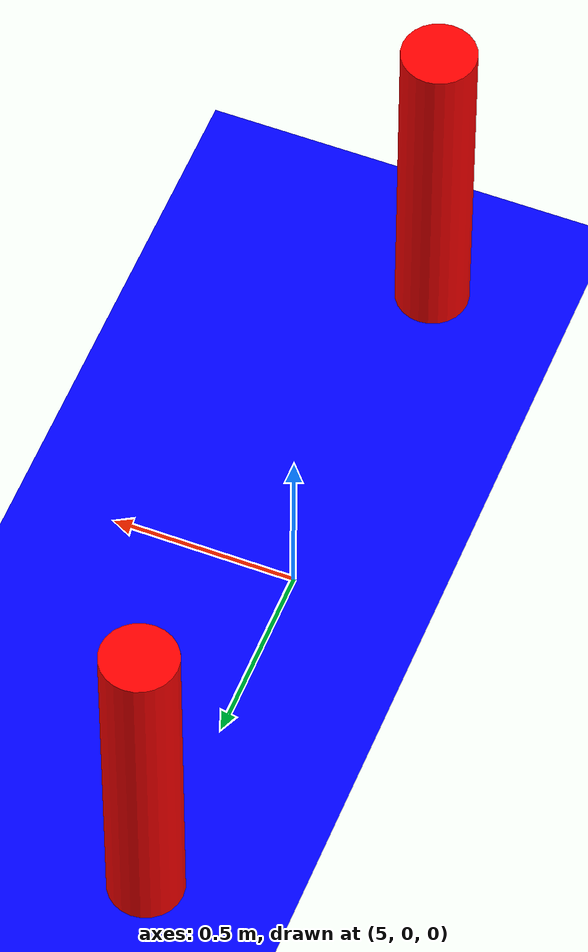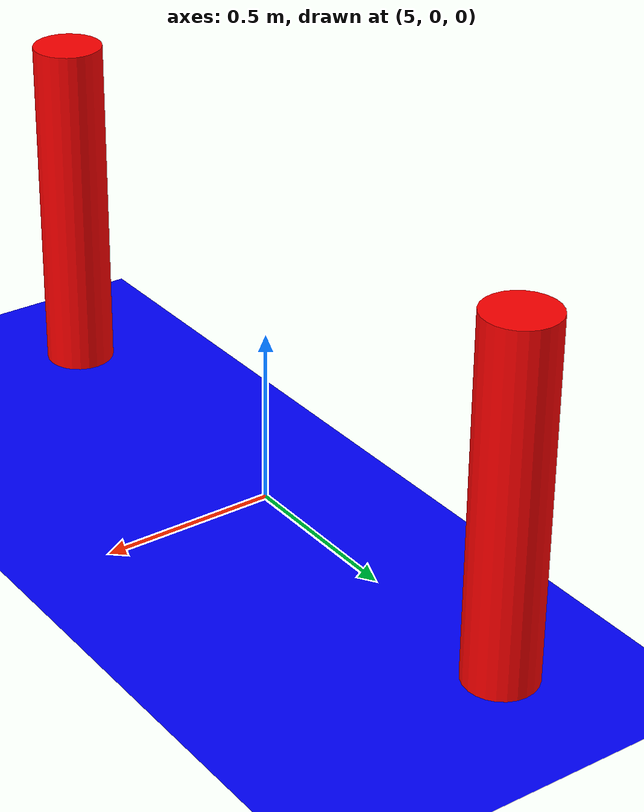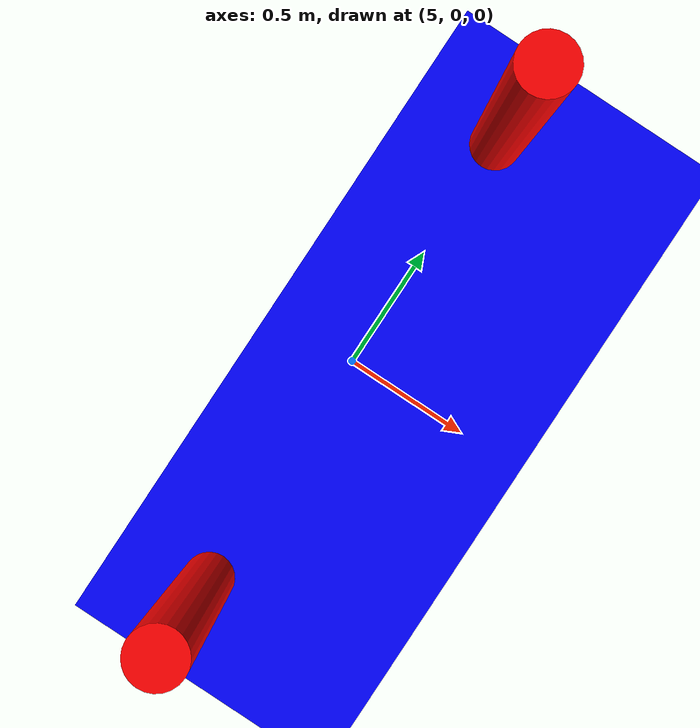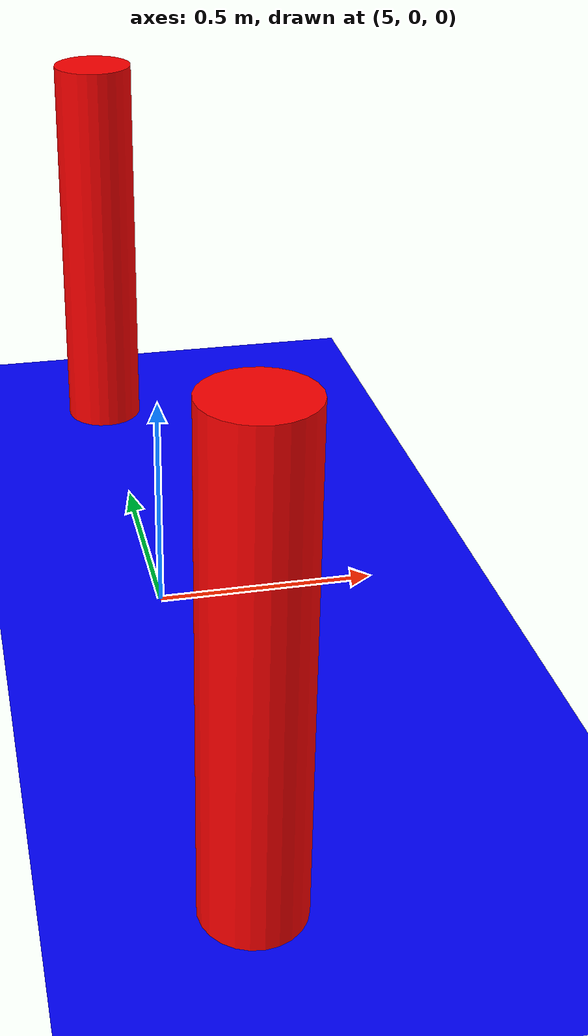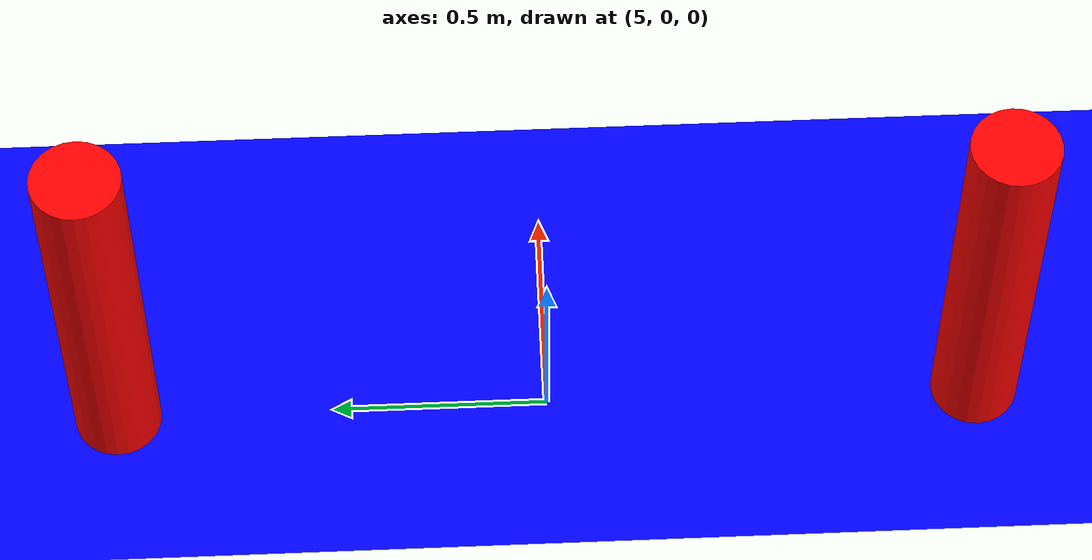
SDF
<?xml version="1.0" ?>
<sdf version="1.7">
  <world name="default">
    <include>
      <uri>model://sun</uri>
    </include>

    <model name="ground_plane">
      <static>true</static>
      <link name="link">
        <collision name="collision">
          <geometry>
            <plane>
              <normal>0 0 1</normal>
              <size>100 100</size>
            </plane>
          </geometry>
        </collision>
        <visual name="visual">
          <geometry>
            <plane>
              <normal>0 0 1</normal>
              <size>100 100</size>
            </plane>
          </geometry>
          <material>
            <ambient>0.0 0.0 1.0 1</ambient>
            <diffuse>0.0 0.0 1.0 1</diffuse>
            <specular>0.1 0.1 0.1 1</specular>
          </material>
        </visual>
      </link>
    </model>

    <model name="gate_pole_1">
      <static>true</static>
      <pose>5 1 0.5 0 0 0</pose>
      <link name="link">
        <visual name="visual">
          <geometry>
            <cylinder>
              <radius>0.1</radius>
              <length>1.0</length>
            </cylinder>
          </geometry>
          <material>
            <ambient>1.0 0.0 0.0 1</ambient>
            <diffuse>1.0 0.0 0.0 1</diffuse>
          </material>
        </visual>
      </link>
    </model>

    <model name="gate_pole_2">
      <static>true</static>
      <pose>5 -1 0.5 0 0 0</pose>
      <link name="link">
        <visual name="visual">
          <geometry>
            <cylinder>
              <radius>0.1</radius>
              <length>1.0</length>
            </cylinder>
          </geometry>
          <material>
            <ambient>1.0 0.0 0.0 1</ambient>
            <diffuse>1.0 0.0 0.0 1</diffuse>
          </material>
        </visual>
      </link>
    </model>
  </world>
</sdf>
